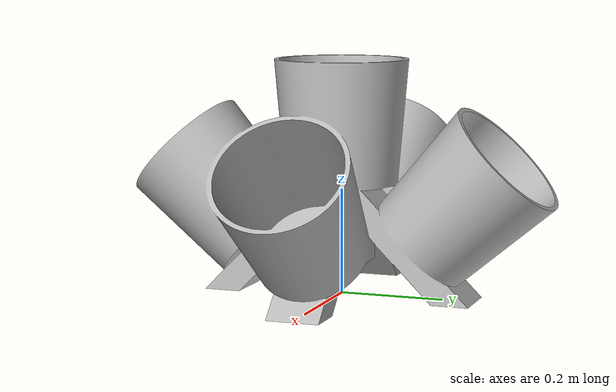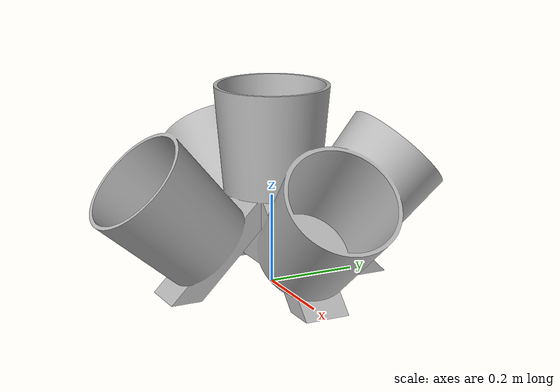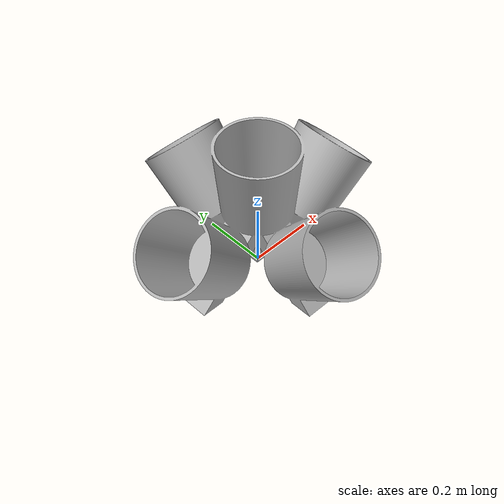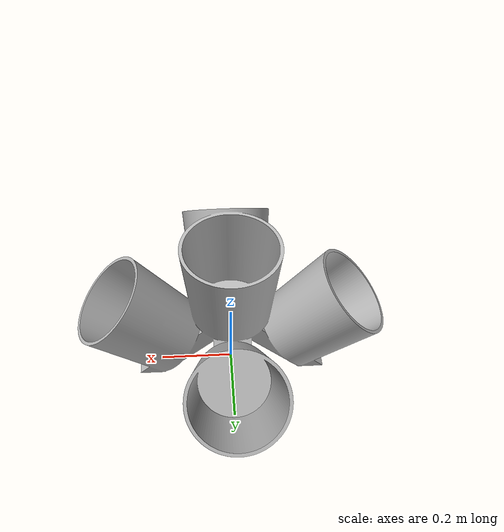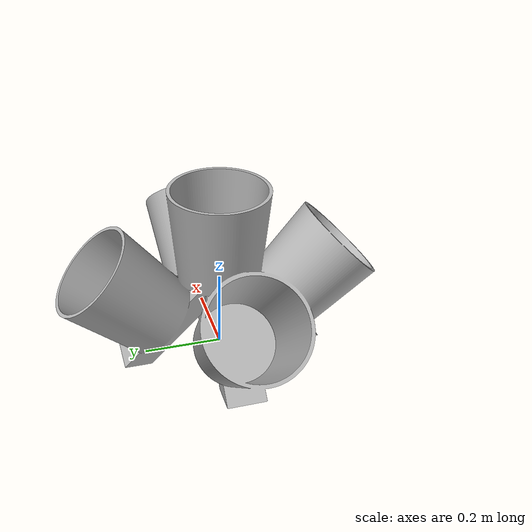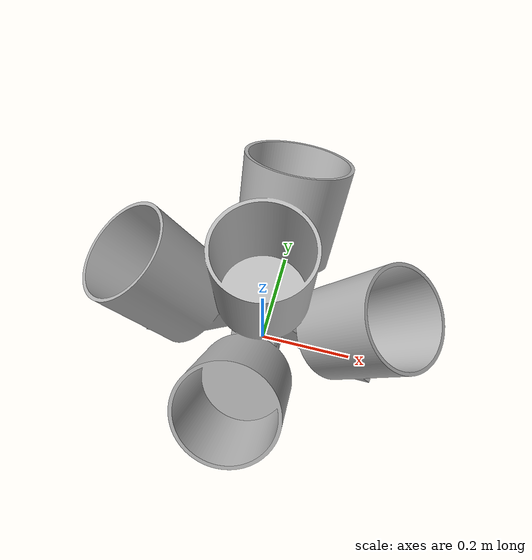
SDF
<?xml version="1.0" ?>
<sdf version="1.9">
  <model name="bucket_stand_3">
    <static>true</static>
    <link name="link">
      <collision name="collision">

        <geometry>
          <mesh>
            <uri>model://bucket_stand_3/meshes/target_3/target_3.dae</uri>
            <scale>1 1 1</scale>
          </mesh>
        </geometry>
      </collision>
      <visual name="visual">

        <geometry>
          <mesh>
            <uri>model://bucket_stand_3/meshes/target_3/target_3.dae</uri>
            <scale>1 1 1</scale>
          </mesh>
        </geometry>

        <surface>
          <contact>
            <collide_bitmask>0</collide_bitmask>
          </contact>
        </surface>

      </visual>
    </link>
  </model>
</sdf>
